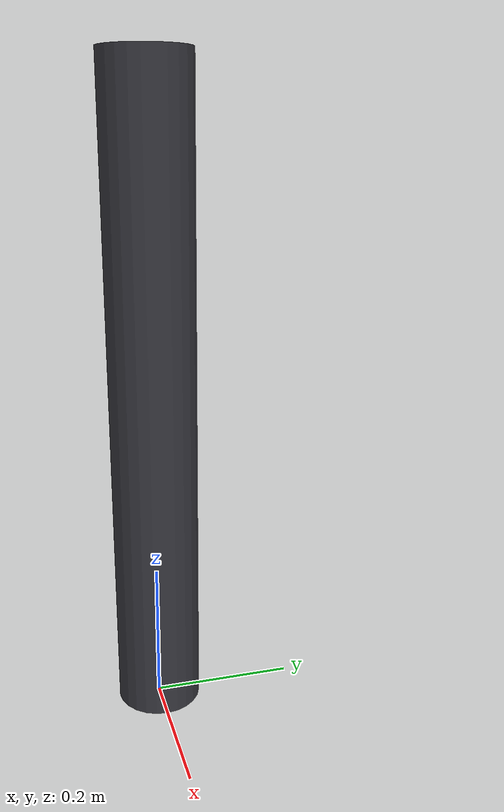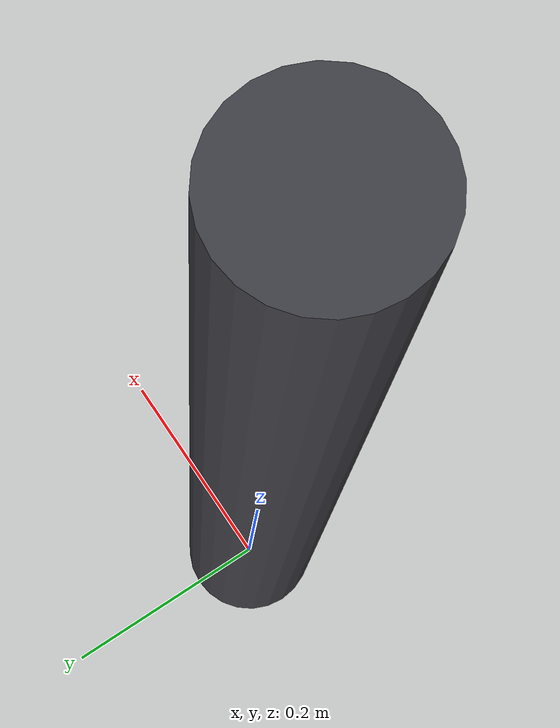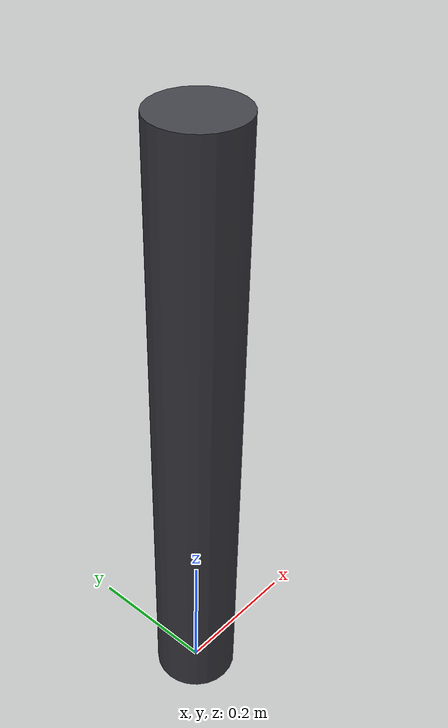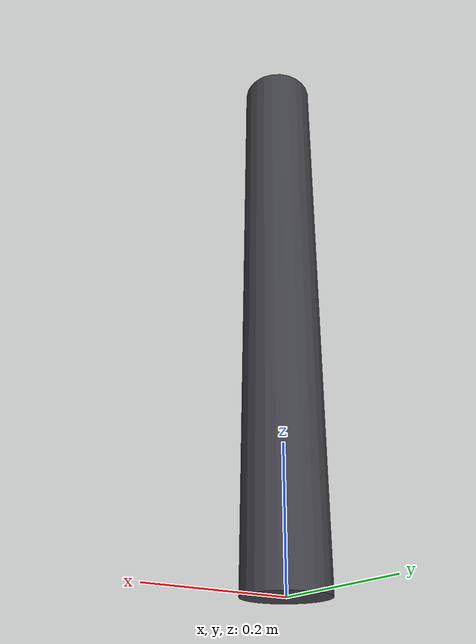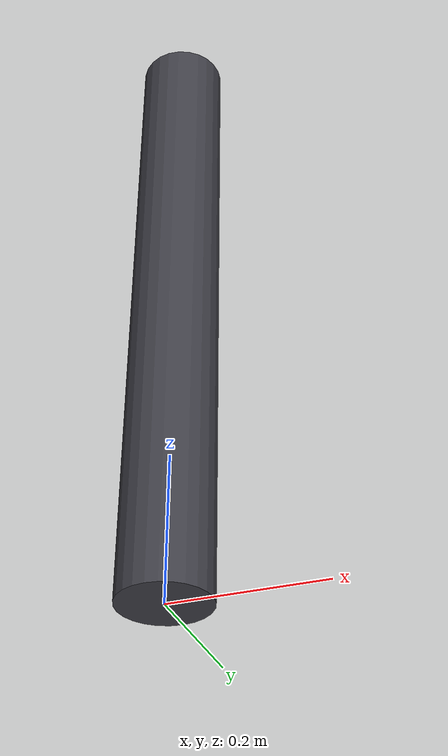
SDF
<?xml version="1.0" ?>
<sdf version="1.6">
  <model name="bollard">
    <static>true</static>
    <link name="link">
      <collision name="collision">
        <pose>0 0 0.45 0 0 0</pose>
        <geometry>
          <cylinder>
            <radius>0.06</radius>
            <length>0.9</length>
          </cylinder>
        </geometry>
      </collision>
      <visual name="visual">
        <pose>0 0 0.45 0 0 0</pose>
        <geometry>
          <cylinder>
            <radius>0.06</radius>
            <length>0.9</length>
          </cylinder>
        </geometry>
        <material>
          <ambient>0.18 0.18 0.20 1</ambient>
          <diffuse>0.25 0.25 0.28 1</diffuse>
          <specular>0.10 0.10 0.10 1</specular>
        </material>
      </visual>
    </link>
  </model>
</sdf>
